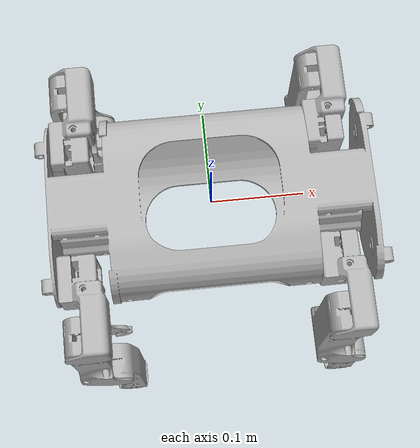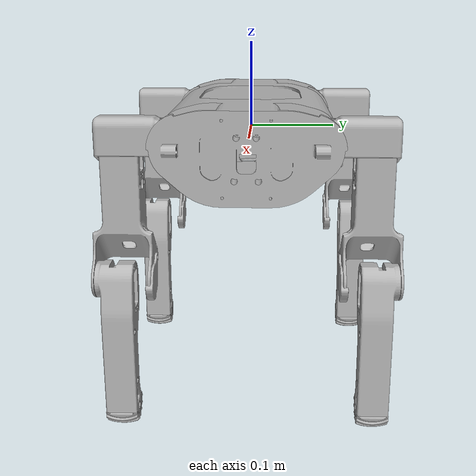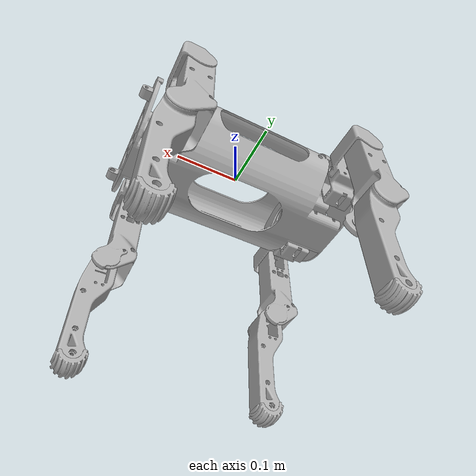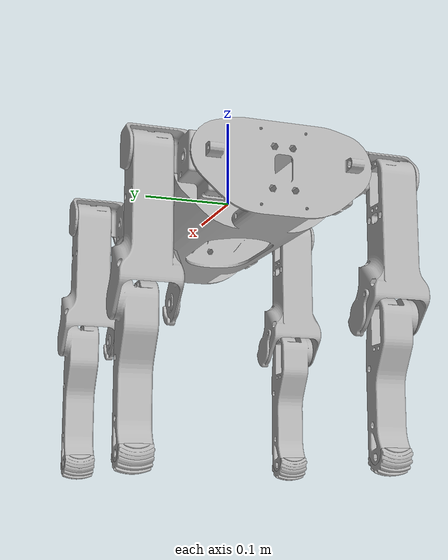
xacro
<?xml version="1.0" ?>
<robot name="quadruped_v1" xmlns:xacro="http://www.ros.org/wiki/xacro">

<xacro:include filename="$(find quadruped_v1_description)/urdf/materials.xacro" />
<xacro:include filename="$(find quadruped_v1_description)/urdf/quadruped_v1.trans" />
<xacro:include filename="$(find quadruped_v1_description)/urdf/quadruped_v1.gazebo" />
<link name="base_link">
  <inertial>
    <origin xyz="0.0009294833926678882 -0.00037967313639209924 -0.009224571071300017" rpy="0 0 0"/>
    <mass value="7.794810015152198"/>
    <inertia ixx="0.025672" iyy="0.135211" izz="0.143448" ixy="-0.0" iyz="0.0" ixz="-5.3e-05"/>
  </inertial>
  <visual>
    <origin xyz="0 0 0" rpy="0 0 0"/>
    <geometry>
      <mesh filename="package://quadruped_v1_description/meshes/base_link.stl" scale="0.001 0.001 0.001"/>
    </geometry>
    <material name="silver"/>
  </visual>
  <collision>
    <origin xyz="0 0 0" rpy="0 0 0"/>
    <geometry>
      <mesh filename="package://quadruped_v1_description/meshes/base_link.stl" scale="0.001 0.001 0.001"/>
    </geometry>
  </collision>
</link>

<link name="LF_shoulder_1">
  <inertial>
    <origin xyz="0.02483325275447834 0.024789447484620697 -0.0012080260668229997" rpy="0 0 0"/>
    <mass value="0.7519601881635327"/>
    <inertia ixx="0.00093" iyy="0.000429" izz="0.00081" ixy="-0.000109" iyz="-0.000161" ixz="-6e-05"/>
  </inertial>
  <visual>
    <origin xyz="-0.10802 -0.06462 -0.0" rpy="0 0 0"/>
    <geometry>
      <mesh filename="package://quadruped_v1_description/meshes/LF_shoulder_1.stl" scale="0.001 0.001 0.001"/>
    </geometry>
    <material name="silver"/>
  </visual>
  <collision>
    <origin xyz="-0.10802 -0.06462 -0.0" rpy="0 0 0"/>
    <geometry>
      <mesh filename="package://quadruped_v1_description/meshes/LF_shoulder_1.stl" scale="0.001 0.001 0.001"/>
    </geometry>
  </collision>
</link>

<link name="RF_shoulder_1">
  <inertial>
    <origin xyz="0.024833248126540558 -0.024788764924502424 -0.0012080213003530487" rpy="0 0 0"/>
    <mass value="0.7519609779146147"/>
    <inertia ixx="0.00093" iyy="0.000429" izz="0.00081" ixy="0.000109" iyz="0.000161" ixz="-6e-05"/>
  </inertial>
  <visual>
    <origin xyz="-0.10802 0.06538 0.0" rpy="0 0 0"/>
    <geometry>
      <mesh filename="package://quadruped_v1_description/meshes/RF_shoulder_1.stl" scale="0.001 0.001 0.001"/>
    </geometry>
    <material name="silver"/>
  </visual>
  <collision>
    <origin xyz="-0.10802 0.06538 0.0" rpy="0 0 0"/>
    <geometry>
      <mesh filename="package://quadruped_v1_description/meshes/RF_shoulder_1.stl" scale="0.001 0.001 0.001"/>
    </geometry>
  </collision>
</link>

<link name="LR_shoulder_1">
  <inertial>
    <origin xyz="0.024833252754478008 0.024789447484619684 -0.0012080260668241585" rpy="0 0 0"/>
    <mass value="0.7519601881634687"/>
    <inertia ixx="0.00093" iyy="0.000429" izz="0.00081" ixy="-0.000109" iyz="-0.000161" ixz="-6e-05"/>
  </inertial>
  <visual>
    <origin xyz="0.16928 -0.06462 -0.0" rpy="0 0 0"/>
    <geometry>
      <mesh filename="package://quadruped_v1_description/meshes/LR_shoulder_1.stl" scale="0.001 0.001 0.001"/>
    </geometry>
    <material name="silver"/>
  </visual>
  <collision>
    <origin xyz="0.16928 -0.06462 -0.0" rpy="0 0 0"/>
    <geometry>
      <mesh filename="package://quadruped_v1_description/meshes/LR_shoulder_1.stl" scale="0.001 0.001 0.001"/>
    </geometry>
  </collision>
</link>

<link name="RR_shoulder_1">
  <inertial>
    <origin xyz="0.024833248126540225 -0.024788764924507434 -0.001208021300354498" rpy="0 0 0"/>
    <mass value="0.7519609779144845"/>
    <inertia ixx="0.00093" iyy="0.000429" izz="0.00081" ixy="0.000109" iyz="0.000161" ixz="-6e-05"/>
  </inertial>
  <visual>
    <origin xyz="0.16928 0.06538 0.0" rpy="0 0 0"/>
    <geometry>
      <mesh filename="package://quadruped_v1_description/meshes/RR_shoulder_1.stl" scale="0.001 0.001 0.001"/>
    </geometry>
    <material name="silver"/>
  </visual>
  <collision>
    <origin xyz="0.16928 0.06538 0.0" rpy="0 0 0"/>
    <geometry>
      <mesh filename="package://quadruped_v1_description/meshes/RR_shoulder_1.stl" scale="0.001 0.001 0.001"/>
    </geometry>
  </collision>
</link>

<link name="LF_upperleg_1">
  <inertial>
    <origin xyz="0.0010223181011697058 -0.021223360637379868 -0.06538783486980808" rpy="0 0 0"/>
    <mass value="1.045848425660008"/>
    <inertia ixx="0.003088" iyy="0.00296" izz="0.000565" ixy="1.3e-05" iyz="-3.3e-05" ixz="9.7e-05"/>
  </inertial>
  <visual>
    <origin xyz="-0.12892 -0.15632 -0.0" rpy="0 0 0"/>
    <geometry>
      <mesh filename="package://quadruped_v1_description/meshes/LF_upperleg_1.stl" scale="0.001 0.001 0.001"/>
    </geometry>
    <material name="silver"/>
  </visual>
  <collision>
    <origin xyz="-0.12892 -0.15632 -0.0" rpy="0 0 0"/>
    <geometry>
      <mesh filename="package://quadruped_v1_description/meshes/LF_upperleg_1.stl" scale="0.001 0.001 0.001"/>
    </geometry>
  </collision>
</link>

<link name="RF_upperleg_1">
  <inertial>
    <origin xyz="0.001022441053695422 0.02122357549044593 -0.06538643121622952" rpy="0 0 0"/>
    <mass value="1.0458654261286617"/>
    <inertia ixx="0.003088" iyy="0.00296" izz="0.000565" ixy="-1.3e-05" iyz="3.3e-05" ixz="9.7e-05"/>
  </inertial>
  <visual>
    <origin xyz="-0.12892 0.15708 0.0" rpy="0 0 0"/>
    <geometry>
      <mesh filename="package://quadruped_v1_description/meshes/RF_upperleg_1.stl" scale="0.001 0.001 0.001"/>
    </geometry>
    <material name="silver"/>
  </visual>
  <collision>
    <origin xyz="-0.12892 0.15708 0.0" rpy="0 0 0"/>
    <geometry>
      <mesh filename="package://quadruped_v1_description/meshes/RF_upperleg_1.stl" scale="0.001 0.001 0.001"/>
    </geometry>
  </collision>
</link>

<link name="LR_upperleg_1">
  <inertial>
    <origin xyz="0.0010223181013632177 -0.021223360637377675 -0.06538783486980783" rpy="0 0 0"/>
    <mass value="1.0458484256599858"/>
    <inertia ixx="0.003088" iyy="0.00296" izz="0.000565" ixy="1.3e-05" iyz="-3.3e-05" ixz="9.7e-05"/>
  </inertial>
  <visual>
    <origin xyz="0.14838 -0.15632 -0.0" rpy="0 0 0"/>
    <geometry>
      <mesh filename="package://quadruped_v1_description/meshes/LR_upperleg_1.stl" scale="0.001 0.001 0.001"/>
    </geometry>
    <material name="silver"/>
  </visual>
  <collision>
    <origin xyz="0.14838 -0.15632 -0.0" rpy="0 0 0"/>
    <geometry>
      <mesh filename="package://quadruped_v1_description/meshes/LR_upperleg_1.stl" scale="0.001 0.001 0.001"/>
    </geometry>
  </collision>
</link>

<link name="RR_upperleg_1">
  <inertial>
    <origin xyz="0.0010224410524747873 0.02122357549044601 -0.06538643121622542" rpy="0 0 0"/>
    <mass value="1.0458654261285834"/>
    <inertia ixx="0.003088" iyy="0.00296" izz="0.000565" ixy="-1.3e-05" iyz="3.3e-05" ixz="9.7e-05"/>
  </inertial>
  <visual>
    <origin xyz="0.14838 0.15708 0.0" rpy="0 0 0"/>
    <geometry>
      <mesh filename="package://quadruped_v1_description/meshes/RR_upperleg_1.stl" scale="0.001 0.001 0.001"/>
    </geometry>
    <material name="silver"/>
  </visual>
  <collision>
    <origin xyz="0.14838 0.15708 0.0" rpy="0 0 0"/>
    <geometry>
      <mesh filename="package://quadruped_v1_description/meshes/RR_upperleg_1.stl" scale="0.001 0.001 0.001"/>
    </geometry>
  </collision>
</link>

<link name="LF_lowerleg_1">
  <inertial>
    <origin xyz="0.007423379105765487 -0.023814607088845835 -0.05629045075261249" rpy="0 0 0"/>
    <mass value="0.9239456915759342"/>
    <inertia ixx="0.002276" iyy="0.002318" izz="0.000258" ixy="4e-06" iyz="-1.5e-05" ixz="0.000203"/>
  </inertial>
  <visual>
    <origin xyz="-0.14892 -0.16447 0.148661" rpy="0 0 0"/>
    <geometry>
      <mesh filename="package://quadruped_v1_description/meshes/LF_lowerleg_1.stl" scale="0.001 0.001 0.001"/>
    </geometry>
    <material name="silver"/>
  </visual>
  <collision>
    <origin xyz="-0.14892 -0.16447 0.148661" rpy="0 0 0"/>
    <geometry>
      <mesh filename="package://quadruped_v1_description/meshes/LF_lowerleg_1.stl" scale="0.001 0.001 0.001"/>
    </geometry>
  </collision>
</link>

<link name="LR_lowerleg_1">
  <inertial>
    <origin xyz="0.007423379105764752 -0.02381460708884625 -0.05629045075261174" rpy="0 0 0"/>
    <mass value="0.9239456915759341"/>
    <inertia ixx="0.002276" iyy="0.002318" izz="0.000258" ixy="4e-06" iyz="-1.5e-05" ixz="0.000203"/>
  </inertial>
  <visual>
    <origin xyz="0.12838 -0.16447 0.148661" rpy="0 0 0"/>
    <geometry>
      <mesh filename="package://quadruped_v1_description/meshes/LR_lowerleg_1.stl" scale="0.001 0.001 0.001"/>
    </geometry>
    <material name="silver"/>
  </visual>
  <collision>
    <origin xyz="0.12838 -0.16447 0.148661" rpy="0 0 0"/>
    <geometry>
      <mesh filename="package://quadruped_v1_description/meshes/LR_lowerleg_1.stl" scale="0.001 0.001 0.001"/>
    </geometry>
  </collision>
</link>

<link name="RF_lowerleg_1">
  <inertial>
    <origin xyz="0.007423386530831355 0.023815254672673647 -0.056290417215945465" rpy="0 0 0"/>
    <mass value="0.9239462460778405"/>
    <inertia ixx="0.002276" iyy="0.002318" izz="0.000258" ixy="-4e-06" iyz="1.5e-05" ixz="0.000203"/>
  </inertial>
  <visual>
    <origin xyz="-0.14892 0.16523 0.148661" rpy="0 0 0"/>
    <geometry>
      <mesh filename="package://quadruped_v1_description/meshes/RF_lowerleg_1.stl" scale="0.001 0.001 0.001"/>
    </geometry>
    <material name="silver"/>
  </visual>
  <collision>
    <origin xyz="-0.14892 0.16523 0.148661" rpy="0 0 0"/>
    <geometry>
      <mesh filename="package://quadruped_v1_description/meshes/RF_lowerleg_1.stl" scale="0.001 0.001 0.001"/>
    </geometry>
  </collision>
</link>

<link name="RR_lowerleg_1">
  <inertial>
    <origin xyz="0.007423386530831411 0.023815254672673536 -0.056290417215945604" rpy="0 0 0"/>
    <mass value="0.923946246077838"/>
    <inertia ixx="0.002276" iyy="0.002318" izz="0.000258" ixy="-4e-06" iyz="1.5e-05" ixz="0.000203"/>
  </inertial>
  <visual>
    <origin xyz="0.12838 0.16523 0.148661" rpy="0 0 0"/>
    <geometry>
      <mesh filename="package://quadruped_v1_description/meshes/RR_lowerleg_1.stl" scale="0.001 0.001 0.001"/>
    </geometry>
    <material name="silver"/>
  </visual>
  <collision>
    <origin xyz="0.12838 0.16523 0.148661" rpy="0 0 0"/>
    <geometry>
      <mesh filename="package://quadruped_v1_description/meshes/RR_lowerleg_1.stl" scale="0.001 0.001 0.001"/>
    </geometry>
  </collision>
</link>

<link name="LF_foot_1">
  <inertial>
    <origin xyz="-0.002911403247279648 3.6029963587647096e-07 -0.011457957425473786" rpy="0 0 0"/>
    <mass value="0.1756582411083546"/>
    <inertia ixx="2.2e-05" iyy="2.5e-05" izz="3.1e-05" ixy="0.0" iyz="-0.0" ixz="3e-06"/>
  </inertial>
  <visual>
    <origin xyz="-0.159355 -0.14017 0.291731" rpy="0 0 0"/>
    <geometry>
      <mesh filename="package://quadruped_v1_description/meshes/LF_foot_1.stl" scale="0.001 0.001 0.001"/>
    </geometry>
    <material name="silver"/>
  </visual>
  <collision>
    <origin xyz="-0.159355 -0.14017 0.291731" rpy="0 0 0"/>
    <geometry>
      <mesh filename="package://quadruped_v1_description/meshes/LF_foot_1.stl" scale="0.001 0.001 0.001"/>
    </geometry>
  </collision>
</link>

<link name="LR_foot_1">
  <inertial>
    <origin xyz="-0.0029114032472808 3.615420111069412e-07 -0.01145795742547262" rpy="0 0 0"/>
    <mass value="0.17565824110835862"/>
    <inertia ixx="2.2e-05" iyy="2.5e-05" izz="3.1e-05" ixy="0.0" iyz="-0.0" ixz="3e-06"/>
  </inertial>
  <visual>
    <origin xyz="0.117945 -0.14017 0.291731" rpy="0 0 0"/>
    <geometry>
      <mesh filename="package://quadruped_v1_description/meshes/LR_foot_1.stl" scale="0.001 0.001 0.001"/>
    </geometry>
    <material name="silver"/>
  </visual>
  <collision>
    <origin xyz="0.117945 -0.14017 0.291731" rpy="0 0 0"/>
    <geometry>
      <mesh filename="package://quadruped_v1_description/meshes/LR_foot_1.stl" scale="0.001 0.001 0.001"/>
    </geometry>
  </collision>
</link>

<link name="RF_foot_1">
  <inertial>
    <origin xyz="-0.0032084189234554417 2.0306800604941166e-07 -0.011378424728472003" rpy="0 0 0"/>
    <mass value="0.1756662012295613"/>
    <inertia ixx="2.2e-05" iyy="2.5e-05" izz="3.1e-05" ixy="-0.0" iyz="-0.0" ixz="3e-06"/>
  </inertial>
  <visual>
    <origin xyz="-0.159355 0.14093 0.291731" rpy="0 0 0"/>
    <geometry>
      <mesh filename="package://quadruped_v1_description/meshes/RF_foot_1.stl" scale="0.001 0.001 0.001"/>
    </geometry>
    <material name="silver"/>
  </visual>
  <collision>
    <origin xyz="-0.159355 0.14093 0.291731" rpy="0 0 0"/>
    <geometry>
      <mesh filename="package://quadruped_v1_description/meshes/RF_foot_1.stl" scale="0.001 0.001 0.001"/>
    </geometry>
  </collision>
</link>

<link name="RR_foot_1">
  <inertial>
    <origin xyz="-0.003208418923460868 2.0306800663227875e-07 -0.011378424728471781" rpy="0 0 0"/>
    <mass value="0.17566620122954713"/>
    <inertia ixx="2.2e-05" iyy="2.5e-05" izz="3.1e-05" ixy="-0.0" iyz="-0.0" ixz="3e-06"/>
  </inertial>
  <visual>
    <origin xyz="0.117945 0.14093 0.291731" rpy="0 0 0"/>
    <geometry>
      <mesh filename="package://quadruped_v1_description/meshes/RR_foot_1.stl" scale="0.001 0.001 0.001"/>
    </geometry>
    <material name="silver"/>
  </visual>
  <collision>
    <origin xyz="0.117945 0.14093 0.291731" rpy="0 0 0"/>
    <geometry>
      <mesh filename="package://quadruped_v1_description/meshes/RR_foot_1.stl" scale="0.001 0.001 0.001"/>
    </geometry>
  </collision>
</link>

<joint name="LF_hip" type="continuous">
  <origin xyz="0.10802 0.06462 0.0" rpy="0 0 0"/>
  <parent link="base_link"/>
  <child link="LF_shoulder_1"/>
  <axis xyz="1.0 0.0 0.0"/>
</joint>

<joint name="RF_hip" type="continuous">
  <origin xyz="0.10802 -0.06538 0.0" rpy="0 0 0"/>
  <parent link="base_link"/>
  <child link="RF_shoulder_1"/>
  <axis xyz="-1.0 -0.0 -0.0"/>
</joint>

<joint name="LR_hip" type="continuous">
  <origin xyz="-0.16928 0.06462 0.0" rpy="0 0 0"/>
  <parent link="base_link"/>
  <child link="LR_shoulder_1"/>
  <axis xyz="1.0 0.0 0.0"/>
</joint>

<joint name="RR_hip" type="continuous">
  <origin xyz="-0.16928 -0.06538 0.0" rpy="0 0 0"/>
  <parent link="base_link"/>
  <child link="RR_shoulder_1"/>
  <axis xyz="-1.0 -0.0 -0.0"/>
</joint>

<joint name="LF_shoulder" type="continuous">
  <origin xyz="0.0209 0.0917 0.0" rpy="0 0 0"/>
  <parent link="LF_shoulder_1"/>
  <child link="LF_upperleg_1"/>
  <axis xyz="0.0 -1.0 -0.0"/>
</joint>

<joint name="RF_shoulder" type="continuous">
  <origin xyz="0.0209 -0.0917 0.0" rpy="0 0 0"/>
  <parent link="RF_shoulder_1"/>
  <child link="RF_upperleg_1"/>
  <axis xyz="0.0 -1.0 -0.0"/>
</joint>

<joint name="LR_shoulder" type="continuous">
  <origin xyz="0.0209 0.0917 0.0" rpy="0 0 0"/>
  <parent link="LR_shoulder_1"/>
  <child link="LR_upperleg_1"/>
  <axis xyz="0.0 -1.0 -0.0"/>
</joint>

<joint name="RR_shoulder" type="continuous">
  <origin xyz="0.0209 -0.0917 0.0" rpy="0 0 0"/>
  <parent link="RR_shoulder_1"/>
  <child link="RR_upperleg_1"/>
  <axis xyz="0.0 -1.0 -0.0"/>
</joint>

<joint name="LF_elbow" type="continuous">
  <origin xyz="0.02 0.00815 -0.148661" rpy="0 0 0"/>
  <parent link="LF_upperleg_1"/>
  <child link="LF_lowerleg_1"/>
  <axis xyz="0.0 -1.0 -0.0"/>
</joint>

<joint name="LR_elbow" type="continuous">
  <origin xyz="0.02 0.00815 -0.148661" rpy="0 0 0"/>
  <parent link="LR_upperleg_1"/>
  <child link="LR_lowerleg_1"/>
  <axis xyz="0.0 -1.0 -0.0"/>
</joint>

<joint name="RF_elbow" type="continuous">
  <origin xyz="0.02 -0.00815 -0.148661" rpy="0 0 0"/>
  <parent link="RF_upperleg_1"/>
  <child link="RF_lowerleg_1"/>
  <axis xyz="0.0 -1.0 -0.0"/>
</joint>

<joint name="RR_elbow" type="continuous">
  <origin xyz="0.02 -0.00815 -0.148661" rpy="0 0 0"/>
  <parent link="RR_upperleg_1"/>
  <child link="RR_lowerleg_1"/>
  <axis xyz="0.0 -1.0 -0.0"/>
</joint>

<joint name="LF_foot" type="fixed">
  <origin xyz="0.010435 -0.0243 -0.14307" rpy="0 0 0"/>
  <parent link="LF_lowerleg_1"/>
  <child link="LF_foot_1"/>
</joint>

<joint name="LR_foot" type="fixed">
  <origin xyz="0.010435 -0.0243 -0.14307" rpy="0 0 0"/>
  <parent link="LR_lowerleg_1"/>
  <child link="LR_foot_1"/>
</joint>

<joint name="RF_foot" type="fixed">
  <origin xyz="0.010435 0.0243 -0.14307" rpy="0 0 0"/>
  <parent link="RF_lowerleg_1"/>
  <child link="RF_foot_1"/>
</joint>

<joint name="RR_foot" type="fixed">
  <origin xyz="0.010435 0.0243 -0.14307" rpy="0 0 0"/>
  <parent link="RR_lowerleg_1"/>
  <child link="RR_foot_1"/>
</joint>

</robot>

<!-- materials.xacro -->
<robot name="quadruped_v1" xmlns:xacro="http://www.ros.org/wiki/xacro" >

<material name="silver">
  <color rgba="0.700 0.700 0.700 1.000"/>
</material>

</robot>

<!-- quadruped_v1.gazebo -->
<robot name="quadruped_v1" xmlns:xacro="http://www.ros.org/wiki/xacro" >

<xacro:property name="body_color" value="Gazebo/Silver" />

<gazebo>
  <plugin name="control" filename="libgazebo_ros_control.so"/>
</gazebo>
<gazebo reference="base_link">
  <material>${body_color}</material>
  <mu1>0.2</mu1>
  <mu2>0.2</mu2>
  <selfCollide>true</selfCollide>
  <gravity>true</gravity>
</gazebo>

<gazebo reference="LF_shoulder_1">
  <material>${body_color}</material>
  <mu1>0.2</mu1>
  <mu2>0.2</mu2>
  <selfCollide>true</selfCollide>
</gazebo>

<gazebo reference="RF_shoulder_1">
  <material>${body_color}</material>
  <mu1>0.2</mu1>
  <mu2>0.2</mu2>
  <selfCollide>true</selfCollide>
</gazebo>

<gazebo reference="LR_shoulder_1">
  <material>${body_color}</material>
  <mu1>0.2</mu1>
  <mu2>0.2</mu2>
  <selfCollide>true</selfCollide>
</gazebo>

<gazebo reference="RR_shoulder_1">
  <material>${body_color}</material>
  <mu1>0.2</mu1>
  <mu2>0.2</mu2>
  <selfCollide>true</selfCollide>
</gazebo>

<gazebo reference="LF_upperleg_1">
  <material>${body_color}</material>
  <mu1>0.2</mu1>
  <mu2>0.2</mu2>
  <selfCollide>true</selfCollide>
</gazebo>

<gazebo reference="RF_upperleg_1">
  <material>${body_color}</material>
  <mu1>0.2</mu1>
  <mu2>0.2</mu2>
  <selfCollide>true</selfCollide>
</gazebo>

<gazebo reference="LR_upperleg_1">
  <material>${body_color}</material>
  <mu1>0.2</mu1>
  <mu2>0.2</mu2>
  <selfCollide>true</selfCollide>
</gazebo>

<gazebo reference="RR_upperleg_1">
  <material>${body_color}</material>
  <mu1>0.2</mu1>
  <mu2>0.2</mu2>
  <selfCollide>true</selfCollide>
</gazebo>

<gazebo reference="LF_lowerleg_1">
  <material>${body_color}</material>
  <mu1>0.2</mu1>
  <mu2>0.2</mu2>
  <selfCollide>true</selfCollide>
</gazebo>

<gazebo reference="LR_lowerleg_1">
  <material>${body_color}</material>
  <mu1>0.2</mu1>
  <mu2>0.2</mu2>
  <selfCollide>true</selfCollide>
</gazebo>

<gazebo reference="RF_lowerleg_1">
  <material>${body_color}</material>
  <mu1>0.2</mu1>
  <mu2>0.2</mu2>
  <selfCollide>true</selfCollide>
</gazebo>

<gazebo reference="RR_lowerleg_1">
  <material>${body_color}</material>
  <mu1>0.2</mu1>
  <mu2>0.2</mu2>
  <selfCollide>true</selfCollide>
</gazebo>

<gazebo reference="LF_foot_1">
  <material>${body_color}</material>
  <mu1>0.2</mu1>
  <mu2>0.2</mu2>
  <selfCollide>true</selfCollide>
</gazebo>

<gazebo reference="LR_foot_1">
  <material>${body_color}</material>
  <mu1>0.2</mu1>
  <mu2>0.2</mu2>
  <selfCollide>true</selfCollide>
</gazebo>

<gazebo reference="RF_foot_1">
  <material>${body_color}</material>
  <mu1>0.2</mu1>
  <mu2>0.2</mu2>
  <selfCollide>true</selfCollide>
</gazebo>

<gazebo reference="RR_foot_1">
  <material>${body_color}</material>
  <mu1>0.2</mu1>
  <mu2>0.2</mu2>
  <selfCollide>true</selfCollide>
</gazebo>

</robot>
